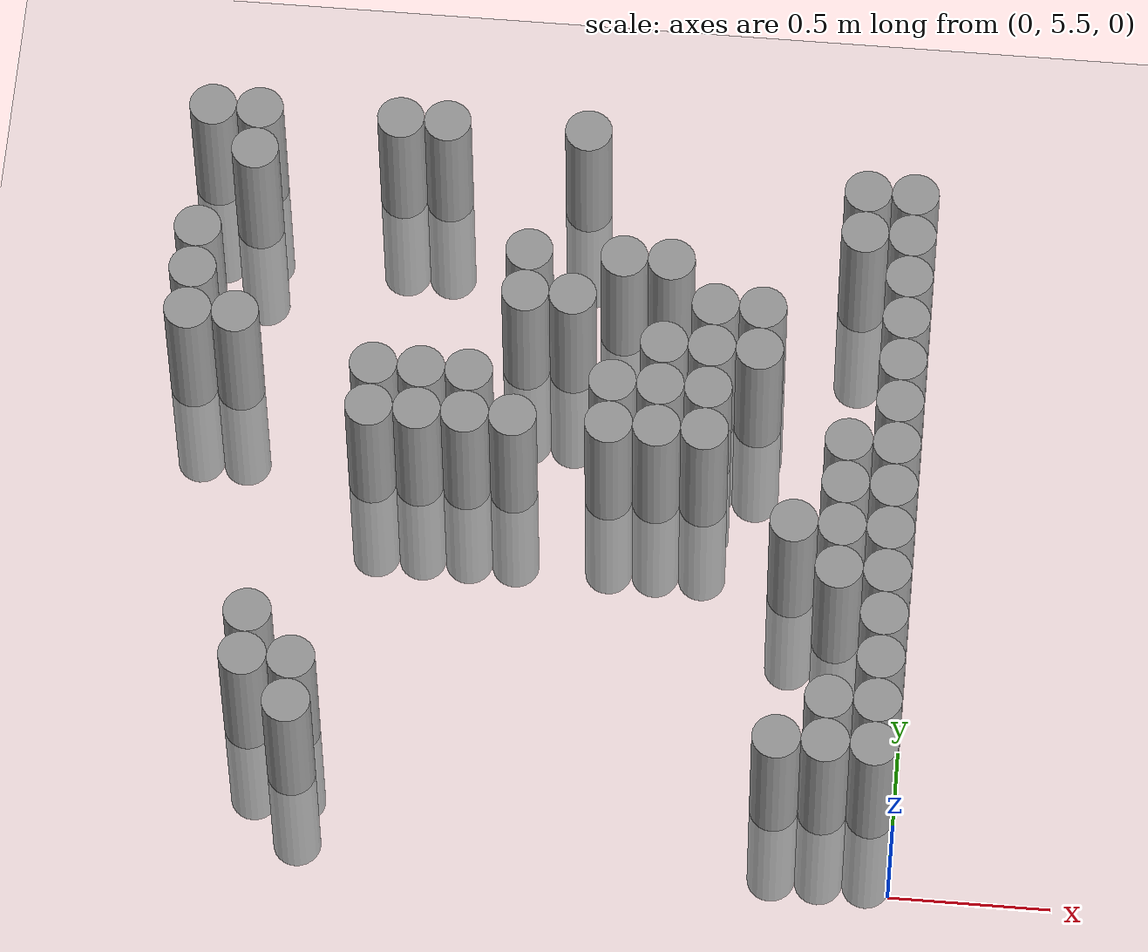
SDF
<sdf version="1.6">
 <world name="default">
  <model name="ground_plane">
   <static>1</static>
   <link name="link">
    <collision name="collision">
     <geometry><plane><normal>0 0 1</normal><size>100 100</size></plane></geometry>
     <surface><friction><ode><mu>100</mu><mu2>50</mu2></ode></friction></surface>
    </collision>
    <visual name="visual">
     <cast_shadows>0</cast_shadows>
     <geometry><plane><normal>0 0 1</normal><size>100 100</size></plane></geometry>
     <material>
      <script><uri>file://media/materials/scripts/gazebo.material</uri><name>Gazebo/Grey</name></script>
     </material>
    </visual>
   </link>
  </model>
  <model name="unit_cylinder_169">
   <pose>-2.325000 7.125000 0.000000 0.000000 0.000000 0.000000</pose>
   <link name="link">
    <inertial>
     <mass>1</mass>
     <inertia><ixx>0.145833</ixx><ixy>0</ixy><ixz>0</ixz><iyy>0.145833</iyy><iyz>0</iyz><izz>0.125</izz></inertia>
    </inertial>
    <collision name="collision">
     <geometry><cylinder><radius>0.075000</radius><length>1</length></cylinder></geometry>
    </collision>
    <visual name="visual">
     <geometry><cylinder><radius>0.075000</radius><length>1</length></cylinder></geometry>
     <material>
      <script><name>Gazebo/Grey</name><uri>file://media/materials/scripts/gazebo.material</uri></script>
     </material>
    </visual>
   </link>
  </model>
  <model name="unit_cylinder_170">
   <pose>-2.325000 7.275000 0.000000 0.000000 0.000000 0.000000</pose>
   <link name="link">
    <inertial>
     <mass>1</mass>
     <inertia><ixx>0.145833</ixx><ixy>0</ixy><ixz>0</ixz><iyy>0.145833</iyy><iyz>0</iyz><izz>0.125</izz></inertia>
    </inertial>
    <collision name="collision">
     <geometry><cylinder><radius>0.075000</radius><length>1</length></cylinder></geometry>
    </collision>
    <visual name="visual">
     <geometry><cylinder><radius>0.075000</radius><length>1</length></cylinder></geometry>
     <material>
      <script><name>Gazebo/Grey</name><uri>file://media/materials/scripts/gazebo.material</uri></script>
     </material>
    </visual>
   </link>
  </model>
  <model name="unit_cylinder_171">
   <pose>-2.325000 7.425000 0.000000 0.000000 0.000000 0.000000</pose>
   <link name="link">
    <inertial>
     <mass>1</mass>
     <inertia><ixx>0.145833</ixx><ixy>0</ixy><ixz>0</ixz><iyy>0.145833</iyy><iyz>0</iyz><izz>0.125</izz></inertia>
    </inertial>
    <collision name="collision">
     <geometry><cylinder><radius>0.075000</radius><length>1</length></cylinder></geometry>
    </collision>
    <visual name="visual">
     <geometry><cylinder><radius>0.075000</radius><length>1</length></cylinder></geometry>
     <material>
      <script><name>Gazebo/Grey</name><uri>file://media/materials/scripts/gazebo.material</uri></script>
     </material>
    </visual>
   </link>
  </model>
  <model name="unit_cylinder_172">
   <pose>-2.325000 7.875000 0.000000 0.000000 0.000000 0.000000</pose>
   <link name="link">
    <inertial>
     <mass>1</mass>
     <inertia><ixx>0.145833</ixx><ixy>0</ixy><ixz>0</ixz><iyy>0.145833</iyy><iyz>0</iyz><izz>0.125</izz></inertia>
    </inertial>
    <collision name="collision">
     <geometry><cylinder><radius>0.075000</radius><length>1</length></cylinder></geometry>
    </collision>
    <visual name="visual">
     <geometry><cylinder><radius>0.075000</radius><length>1</length></cylinder></geometry>
     <material>
      <script><name>Gazebo/Grey</name><uri>file://media/materials/scripts/gazebo.material</uri></script>
     </material>
    </visual>
   </link>
  </model>
  <model name="unit_cylinder_176">
   <pose>-2.175000 7.125000 0.000000 0.000000 0.000000 0.000000</pose>
   <link name="link">
    <inertial>
     <mass>1</mass>
     <inertia><ixx>0.145833</ixx><ixy>0</ixy><ixz>0</ixz><iyy>0.145833</iyy><iyz>0</iyz><izz>0.125</izz></inertia>
    </inertial>
    <collision name="collision">
     <geometry><cylinder><radius>0.075000</radius><length>1</length></cylinder></geometry>
    </collision>
    <visual name="visual">
     <geometry><cylinder><radius>0.075000</radius><length>1</length></cylinder></geometry>
     <material>
      <script><name>Gazebo/Grey</name><uri>file://media/materials/scripts/gazebo.material</uri></script>
     </material>
    </visual>
   </link>
  </model>
  <model name="unit_cylinder_177">
   <pose>-2.175000 7.725000 0.000000 0.000000 0.000000 0.000000</pose>
   <link name="link">
    <inertial>
     <mass>1</mass>
     <inertia><ixx>0.145833</ixx><ixy>0</ixy><ixz>0</ixz><iyy>0.145833</iyy><iyz>0</iyz><izz>0.125</izz></inertia>
    </inertial>
    <collision name="collision">
     <geometry><cylinder><radius>0.075000</radius><length>1</length></cylinder></geometry>
    </collision>
    <visual name="visual">
     <geometry><cylinder><radius>0.075000</radius><length>1</length></cylinder></geometry>
     <material>
      <script><name>Gazebo/Grey</name><uri>file://media/materials/scripts/gazebo.material</uri></script>
     </material>
    </visual>
   </link>
  </model>
  <model name="unit_cylinder_178">
   <pose>-2.175000 7.875000 0.000000 0.000000 0.000000 0.000000</pose>
   <link name="link">
    <inertial>
     <mass>1</mass>
     <inertia><ixx>0.145833</ixx><ixy>0</ixy><ixz>0</ixz><iyy>0.145833</iyy><iyz>0</iyz><izz>0.125</izz></inertia>
    </inertial>
    <collision name="collision">
     <geometry><cylinder><radius>0.075000</radius><length>1</length></cylinder></geometry>
    </collision>
    <visual name="visual">
     <geometry><cylinder><radius>0.075000</radius><length>1</length></cylinder></geometry>
     <material>
      <script><name>Gazebo/Grey</name><uri>file://media/materials/scripts/gazebo.material</uri></script>
     </material>
    </visual>
   </link>
  </model>
  <model name="unit_cylinder_184">
   <pose>-2.025000 5.925000 0.000000 0.000000 0.000000 0.000000</pose>
   <link name="link">
    <inertial>
     <mass>1</mass>
     <inertia><ixx>0.145833</ixx><ixy>0</ixy><ixz>0</ixz><iyy>0.145833</iyy><iyz>0</iyz><izz>0.125</izz></inertia>
    </inertial>
    <collision name="collision">
     <geometry><cylinder><radius>0.075000</radius><length>1</length></cylinder></geometry>
    </collision>
    <visual name="visual">
     <geometry><cylinder><radius>0.075000</radius><length>1</length></cylinder></geometry>
     <material>
      <script><name>Gazebo/Grey</name><uri>file://media/materials/scripts/gazebo.material</uri></script>
     </material>
    </visual>
   </link>
  </model>
  <model name="unit_cylinder_185">
   <pose>-2.025000 6.075000 0.000000 0.000000 0.000000 0.000000</pose>
   <link name="link">
    <inertial>
     <mass>1</mass>
     <inertia><ixx>0.145833</ixx><ixy>0</ixy><ixz>0</ixz><iyy>0.145833</iyy><iyz>0</iyz><izz>0.125</izz></inertia>
    </inertial>
    <collision name="collision">
     <geometry><cylinder><radius>0.075000</radius><length>1</length></cylinder></geometry>
    </collision>
    <visual name="visual">
     <geometry><cylinder><radius>0.075000</radius><length>1</length></cylinder></geometry>
     <material>
      <script><name>Gazebo/Grey</name><uri>file://media/materials/scripts/gazebo.material</uri></script>
     </material>
    </visual>
   </link>
  </model>
  <model name="unit_cylinder_190">
   <pose>-1.875000 5.775000 0.000000 0.000000 0.000000 0.000000</pose>
   <link name="link">
    <inertial>
     <mass>1</mass>
     <inertia><ixx>0.145833</ixx><ixy>0</ixy><ixz>0</ixz><iyy>0.145833</iyy><iyz>0</iyz><izz>0.125</izz></inertia>
    </inertial>
    <collision name="collision">
     <geometry><cylinder><radius>0.075000</radius><length>1</length></cylinder></geometry>
    </collision>
    <visual name="visual">
     <geometry><cylinder><radius>0.075000</radius><length>1</length></cylinder></geometry>
     <material>
      <script><name>Gazebo/Grey</name><uri>file://media/materials/scripts/gazebo.material</uri></script>
     </material>
    </visual>
   </link>
  </model>
  <model name="unit_cylinder_191">
   <pose>-1.875000 5.925000 0.000000 0.000000 0.000000 0.000000</pose>
   <link name="link">
    <inertial>
     <mass>1</mass>
     <inertia><ixx>0.145833</ixx><ixy>0</ixy><ixz>0</ixz><iyy>0.145833</iyy><iyz>0</iyz><izz>0.125</izz></inertia>
    </inertial>
    <collision name="collision">
     <geometry><cylinder><radius>0.075000</radius><length>1</length></cylinder></geometry>
    </collision>
    <visual name="visual">
     <geometry><cylinder><radius>0.075000</radius><length>1</length></cylinder></geometry>
     <material>
      <script><name>Gazebo/Grey</name><uri>file://media/materials/scripts/gazebo.material</uri></script>
     </material>
    </visual>
   </link>
  </model>
  <model name="unit_cylinder_199">
   <pose>-1.725000 6.825000 0.000000 0.000000 0.000000 0.000000</pose>
   <link name="link">
    <inertial>
     <mass>1</mass>
     <inertia><ixx>0.145833</ixx><ixy>0</ixy><ixz>0</ixz><iyy>0.145833</iyy><iyz>0</iyz><izz>0.125</izz></inertia>
    </inertial>
    <collision name="collision">
     <geometry><cylinder><radius>0.075000</radius><length>1</length></cylinder></geometry>
    </collision>
    <visual name="visual">
     <geometry><cylinder><radius>0.075000</radius><length>1</length></cylinder></geometry>
     <material>
      <script><name>Gazebo/Grey</name><uri>file://media/materials/scripts/gazebo.material</uri></script>
     </material>
    </visual>
   </link>
  </model>
  <model name="unit_cylinder_200">
   <pose>-1.725000 6.975000 0.000000 0.000000 0.000000 0.000000</pose>
   <link name="link">
    <inertial>
     <mass>1</mass>
     <inertia><ixx>0.145833</ixx><ixy>0</ixy><ixz>0</ixz><iyy>0.145833</iyy><iyz>0</iyz><izz>0.125</izz></inertia>
    </inertial>
    <collision name="collision">
     <geometry><cylinder><radius>0.075000</radius><length>1</length></cylinder></geometry>
    </collision>
    <visual name="visual">
     <geometry><cylinder><radius>0.075000</radius><length>1</length></cylinder></geometry>
     <material>
      <script><name>Gazebo/Grey</name><uri>file://media/materials/scripts/gazebo.material</uri></script>
     </material>
    </visual>
   </link>
  </model>
  <model name="unit_cylinder_201">
   <pose>-1.725000 7.875000 0.000000 0.000000 0.000000 0.000000</pose>
   <link name="link">
    <inertial>
     <mass>1</mass>
     <inertia><ixx>0.145833</ixx><ixy>0</ixy><ixz>0</ixz><iyy>0.145833</iyy><iyz>0</iyz><izz>0.125</izz></inertia>
    </inertial>
    <collision name="collision">
     <geometry><cylinder><radius>0.075000</radius><length>1</length></cylinder></geometry>
    </collision>
    <visual name="visual">
     <geometry><cylinder><radius>0.075000</radius><length>1</length></cylinder></geometry>
     <material>
      <script><name>Gazebo/Grey</name><uri>file://media/materials/scripts/gazebo.material</uri></script>
     </material>
    </visual>
   </link>
  </model>
  <model name="unit_cylinder_206">
   <pose>-1.575000 6.825000 0.000000 0.000000 0.000000 0.000000</pose>
   <link name="link">
    <inertial>
     <mass>1</mass>
     <inertia><ixx>0.145833</ixx><ixy>0</ixy><ixz>0</ixz><iyy>0.145833</iyy><iyz>0</iyz><izz>0.125</izz></inertia>
    </inertial>
    <collision name="collision">
     <geometry><cylinder><radius>0.075000</radius><length>1</length></cylinder></geometry>
    </collision>
    <visual name="visual">
     <geometry><cylinder><radius>0.075000</radius><length>1</length></cylinder></geometry>
     <material>
      <script><name>Gazebo/Grey</name><uri>file://media/materials/scripts/gazebo.material</uri></script>
     </material>
    </visual>
   </link>
  </model>
  <model name="unit_cylinder_207">
   <pose>-1.575000 6.975000 0.000000 0.000000 0.000000 0.000000</pose>
   <link name="link">
    <inertial>
     <mass>1</mass>
     <inertia><ixx>0.145833</ixx><ixy>0</ixy><ixz>0</ixz><iyy>0.145833</iyy><iyz>0</iyz><izz>0.125</izz></inertia>
    </inertial>
    <collision name="collision">
     <geometry><cylinder><radius>0.075000</radius><length>1</length></cylinder></geometry>
    </collision>
    <visual name="visual">
     <geometry><cylinder><radius>0.075000</radius><length>1</length></cylinder></geometry>
     <material>
      <script><name>Gazebo/Grey</name><uri>file://media/materials/scripts/gazebo.material</uri></script>
     </material>
    </visual>
   </link>
  </model>
  <model name="unit_cylinder_208">
   <pose>-1.575000 7.875000 0.000000 0.000000 0.000000 0.000000</pose>
   <link name="link">
    <inertial>
     <mass>1</mass>
     <inertia><ixx>0.145833</ixx><ixy>0</ixy><ixz>0</ixz><iyy>0.145833</iyy><iyz>0</iyz><izz>0.125</izz></inertia>
    </inertial>
    <collision name="collision">
     <geometry><cylinder><radius>0.075000</radius><length>1</length></cylinder></geometry>
    </collision>
    <visual name="visual">
     <geometry><cylinder><radius>0.075000</radius><length>1</length></cylinder></geometry>
     <material>
      <script><name>Gazebo/Grey</name><uri>file://media/materials/scripts/gazebo.material</uri></script>
     </material>
    </visual>
   </link>
  </model>
  <model name="unit_cylinder_214">
   <pose>-1.425000 6.825000 0.000000 0.000000 0.000000 0.000000</pose>
   <link name="link">
    <inertial>
     <mass>1</mass>
     <inertia><ixx>0.145833</ixx><ixy>0</ixy><ixz>0</ixz><iyy>0.145833</iyy><iyz>0</iyz><izz>0.125</izz></inertia>
    </inertial>
    <collision name="collision">
     <geometry><cylinder><radius>0.075000</radius><length>1</length></cylinder></geometry>
    </collision>
    <visual name="visual">
     <geometry><cylinder><radius>0.075000</radius><length>1</length></cylinder></geometry>
     <material>
      <script><name>Gazebo/Grey</name><uri>file://media/materials/scripts/gazebo.material</uri></script>
     </material>
    </visual>
   </link>
  </model>
  <model name="unit_cylinder_215">
   <pose>-1.425000 6.975000 0.000000 0.000000 0.000000 0.000000</pose>
   <link name="link">
    <inertial>
     <mass>1</mass>
     <inertia><ixx>0.145833</ixx><ixy>0</ixy><ixz>0</ixz><iyy>0.145833</iyy><iyz>0</iyz><izz>0.125</izz></inertia>
    </inertial>
    <collision name="collision">
     <geometry><cylinder><radius>0.075000</radius><length>1</length></cylinder></geometry>
    </collision>
    <visual name="visual">
     <geometry><cylinder><radius>0.075000</radius><length>1</length></cylinder></geometry>
     <material>
      <script><name>Gazebo/Grey</name><uri>file://media/materials/scripts/gazebo.material</uri></script>
     </material>
    </visual>
   </link>
  </model>
  <model name="unit_cylinder_220">
   <pose>-1.275000 6.825000 0.000000 0.000000 0.000000 0.000000</pose>
   <link name="link">
    <inertial>
     <mass>1</mass>
     <inertia><ixx>0.145833</ixx><ixy>0</ixy><ixz>0</ixz><iyy>0.145833</iyy><iyz>0</iyz><izz>0.125</izz></inertia>
    </inertial>
    <collision name="collision">
     <geometry><cylinder><radius>0.075000</radius><length>1</length></cylinder></geometry>
    </collision>
    <visual name="visual">
     <geometry><cylinder><radius>0.075000</radius><length>1</length></cylinder></geometry>
     <material>
      <script><name>Gazebo/Grey</name><uri>file://media/materials/scripts/gazebo.material</uri></script>
     </material>
    </visual>
   </link>
  </model>
  <model name="unit_cylinder_221">
   <pose>-1.275000 7.275000 0.000000 0.000000 0.000000 0.000000</pose>
   <link name="link">
    <inertial>
     <mass>1</mass>
     <inertia><ixx>0.145833</ixx><ixy>0</ixy><ixz>0</ixz><iyy>0.145833</iyy><iyz>0</iyz><izz>0.125</izz></inertia>
    </inertial>
    <collision name="collision">
     <geometry><cylinder><radius>0.075000</radius><length>1</length></cylinder></geometry>
    </collision>
    <visual name="visual">
     <geometry><cylinder><radius>0.075000</radius><length>1</length></cylinder></geometry>
     <material>
      <script><name>Gazebo/Grey</name><uri>file://media/materials/scripts/gazebo.material</uri></script>
     </material>
    </visual>
   </link>
  </model>
  <model name="unit_cylinder_222">
   <pose>-1.275000 7.425000 0.000000 0.000000 0.000000 0.000000</pose>
   <link name="link">
    <inertial>
     <mass>1</mass>
     <inertia><ixx>0.145833</ixx><ixy>0</ixy><ixz>0</ixz><iyy>0.145833</iyy><iyz>0</iyz><izz>0.125</izz></inertia>
    </inertial>
    <collision name="collision">
     <geometry><cylinder><radius>0.075000</radius><length>1</length></cylinder></geometry>
    </collision>
    <visual name="visual">
     <geometry><cylinder><radius>0.075000</radius><length>1</length></cylinder></geometry>
     <material>
      <script><name>Gazebo/Grey</name><uri>file://media/materials/scripts/gazebo.material</uri></script>
     </material>
    </visual>
   </link>
  </model>
  <model name="unit_cylinder_225">
   <pose>-1.125000 7.275000 0.000000 0.000000 0.000000 0.000000</pose>
   <link name="link">
    <inertial>
     <mass>1</mass>
     <inertia><ixx>0.145833</ixx><ixy>0</ixy><ixz>0</ixz><iyy>0.145833</iyy><iyz>0</iyz><izz>0.125</izz></inertia>
    </inertial>
    <collision name="collision">
     <geometry><cylinder><radius>0.075000</radius><length>1</length></cylinder></geometry>
    </collision>
    <visual name="visual">
     <geometry><cylinder><radius>0.075000</radius><length>1</length></cylinder></geometry>
     <material>
      <script><name>Gazebo/Grey</name><uri>file://media/materials/scripts/gazebo.material</uri></script>
     </material>
    </visual>
   </link>
  </model>
  <model name="unit_cylinder_226">
   <pose>-1.125000 7.875000 0.000000 0.000000 0.000000 0.000000</pose>
   <link name="link">
    <inertial>
     <mass>1</mass>
     <inertia><ixx>0.145833</ixx><ixy>0</ixy><ixz>0</ixz><iyy>0.145833</iyy><iyz>0</iyz><izz>0.125</izz></inertia>
    </inertial>
    <collision name="collision">
     <geometry><cylinder><radius>0.075000</radius><length>1</length></cylinder></geometry>
    </collision>
    <visual name="visual">
     <geometry><cylinder><radius>0.075000</radius><length>1</length></cylinder></geometry>
     <material>
      <script><name>Gazebo/Grey</name><uri>file://media/materials/scripts/gazebo.material</uri></script>
     </material>
    </visual>
   </link>
  </model>
  <model name="unit_cylinder_228">
   <pose>-0.975000 6.825000 0.000000 0.000000 0.000000 0.000000</pose>
   <link name="link">
    <inertial>
     <mass>1</mass>
     <inertia><ixx>0.145833</ixx><ixy>0</ixy><ixz>0</ixz><iyy>0.145833</iyy><iyz>0</iyz><izz>0.125</izz></inertia>
    </inertial>
    <collision name="collision">
     <geometry><cylinder><radius>0.075000</radius><length>1</length></cylinder></geometry>
    </collision>
    <visual name="visual">
     <geometry><cylinder><radius>0.075000</radius><length>1</length></cylinder></geometry>
     <material>
      <script><name>Gazebo/Grey</name><uri>file://media/materials/scripts/gazebo.material</uri></script>
     </material>
    </visual>
   </link>
  </model>
  <model name="unit_cylinder_229">
   <pose>-0.975000 6.975000 0.000000 0.000000 0.000000 0.000000</pose>
   <link name="link">
    <inertial>
     <mass>1</mass>
     <inertia><ixx>0.145833</ixx><ixy>0</ixy><ixz>0</ixz><iyy>0.145833</iyy><iyz>0</iyz><izz>0.125</izz></inertia>
    </inertial>
    <collision name="collision">
     <geometry><cylinder><radius>0.075000</radius><length>1</length></cylinder></geometry>
    </collision>
    <visual name="visual">
     <geometry><cylinder><radius>0.075000</radius><length>1</length></cylinder></geometry>
     <material>
      <script><name>Gazebo/Grey</name><uri>file://media/materials/scripts/gazebo.material</uri></script>
     </material>
    </visual>
   </link>
  </model>
  <model name="unit_cylinder_230">
   <pose>-0.975000 7.425000 0.000000 0.000000 0.000000 0.000000</pose>
   <link name="link">
    <inertial>
     <mass>1</mass>
     <inertia><ixx>0.145833</ixx><ixy>0</ixy><ixz>0</ixz><iyy>0.145833</iyy><iyz>0</iyz><izz>0.125</izz></inertia>
    </inertial>
    <collision name="collision">
     <geometry><cylinder><radius>0.075000</radius><length>1</length></cylinder></geometry>
    </collision>
    <visual name="visual">
     <geometry><cylinder><radius>0.075000</radius><length>1</length></cylinder></geometry>
     <material>
      <script><name>Gazebo/Grey</name><uri>file://media/materials/scripts/gazebo.material</uri></script>
     </material>
    </visual>
   </link>
  </model>
  <model name="unit_cylinder_234">
   <pose>-0.825000 6.825000 0.000000 0.000000 0.000000 0.000000</pose>
   <link name="link">
    <inertial>
     <mass>1</mass>
     <inertia><ixx>0.145833</ixx><ixy>0</ixy><ixz>0</ixz><iyy>0.145833</iyy><iyz>0</iyz><izz>0.125</izz></inertia>
    </inertial>
    <collision name="collision">
     <geometry><cylinder><radius>0.075000</radius><length>1</length></cylinder></geometry>
    </collision>
    <visual name="visual">
     <geometry><cylinder><radius>0.075000</radius><length>1</length></cylinder></geometry>
     <material>
      <script><name>Gazebo/Grey</name><uri>file://media/materials/scripts/gazebo.material</uri></script>
     </material>
    </visual>
   </link>
  </model>
  <model name="unit_cylinder_235">
   <pose>-0.825000 6.975000 0.000000 0.000000 0.000000 0.000000</pose>
   <link name="link">
    <inertial>
     <mass>1</mass>
     <inertia><ixx>0.145833</ixx><ixy>0</ixy><ixz>0</ixz><iyy>0.145833</iyy><iyz>0</iyz><izz>0.125</izz></inertia>
    </inertial>
    <collision name="collision">
     <geometry><cylinder><radius>0.075000</radius><length>1</length></cylinder></geometry>
    </collision>
    <visual name="visual">
     <geometry><cylinder><radius>0.075000</radius><length>1</length></cylinder></geometry>
     <material>
      <script><name>Gazebo/Grey</name><uri>file://media/materials/scripts/gazebo.material</uri></script>
     </material>
    </visual>
   </link>
  </model>
  <model name="unit_cylinder_236">
   <pose>-0.825000 7.125000 0.000000 0.000000 0.000000 0.000000</pose>
   <link name="link">
    <inertial>
     <mass>1</mass>
     <inertia><ixx>0.145833</ixx><ixy>0</ixy><ixz>0</ixz><iyy>0.145833</iyy><iyz>0</iyz><izz>0.125</izz></inertia>
    </inertial>
    <collision name="collision">
     <geometry><cylinder><radius>0.075000</radius><length>1</length></cylinder></geometry>
    </collision>
    <visual name="visual">
     <geometry><cylinder><radius>0.075000</radius><length>1</length></cylinder></geometry>
     <material>
      <script><name>Gazebo/Grey</name><uri>file://media/materials/scripts/gazebo.material</uri></script>
     </material>
    </visual>
   </link>
  </model>
  <model name="unit_cylinder_237">
   <pose>-0.825000 7.425000 0.000000 0.000000 0.000000 0.000000</pose>
   <link name="link">
    <inertial>
     <mass>1</mass>
     <inertia><ixx>0.145833</ixx><ixy>0</ixy><ixz>0</ixz><iyy>0.145833</iyy><iyz>0</iyz><izz>0.125</izz></inertia>
    </inertial>
    <collision name="collision">
     <geometry><cylinder><radius>0.075000</radius><length>1</length></cylinder></geometry>
    </collision>
    <visual name="visual">
     <geometry><cylinder><radius>0.075000</radius><length>1</length></cylinder></geometry>
     <material>
      <script><name>Gazebo/Grey</name><uri>file://media/materials/scripts/gazebo.material</uri></script>
     </material>
    </visual>
   </link>
  </model>
  <model name="unit_cylinder_242">
   <pose>-0.675000 6.825000 0.000000 0.000000 0.000000 0.000000</pose>
   <link name="link">
    <inertial>
     <mass>1</mass>
     <inertia><ixx>0.145833</ixx><ixy>0</ixy><ixz>0</ixz><iyy>0.145833</iyy><iyz>0</iyz><izz>0.125</izz></inertia>
    </inertial>
    <collision name="collision">
     <geometry><cylinder><radius>0.075000</radius><length>1</length></cylinder></geometry>
    </collision>
    <visual name="visual">
     <geometry><cylinder><radius>0.075000</radius><length>1</length></cylinder></geometry>
     <material>
      <script><name>Gazebo/Grey</name><uri>file://media/materials/scripts/gazebo.material</uri></script>
     </material>
    </visual>
   </link>
  </model>
  <model name="unit_cylinder_243">
   <pose>-0.675000 6.975000 0.000000 0.000000 0.000000 0.000000</pose>
   <link name="link">
    <inertial>
     <mass>1</mass>
     <inertia><ixx>0.145833</ixx><ixy>0</ixy><ixz>0</ixz><iyy>0.145833</iyy><iyz>0</iyz><izz>0.125</izz></inertia>
    </inertial>
    <collision name="collision">
     <geometry><cylinder><radius>0.075000</radius><length>1</length></cylinder></geometry>
    </collision>
    <visual name="visual">
     <geometry><cylinder><radius>0.075000</radius><length>1</length></cylinder></geometry>
     <material>
      <script><name>Gazebo/Grey</name><uri>file://media/materials/scripts/gazebo.material</uri></script>
     </material>
    </visual>
   </link>
  </model>
  <model name="unit_cylinder_244">
   <pose>-0.675000 7.125000 0.000000 0.000000 0.000000 0.000000</pose>
   <link name="link">
    <inertial>
     <mass>1</mass>
     <inertia><ixx>0.145833</ixx><ixy>0</ixy><ixz>0</ixz><iyy>0.145833</iyy><iyz>0</iyz><izz>0.125</izz></inertia>
    </inertial>
    <collision name="collision">
     <geometry><cylinder><radius>0.075000</radius><length>1</length></cylinder></geometry>
    </collision>
    <visual name="visual">
     <geometry><cylinder><radius>0.075000</radius><length>1</length></cylinder></geometry>
     <material>
      <script><name>Gazebo/Grey</name><uri>file://media/materials/scripts/gazebo.material</uri></script>
     </material>
    </visual>
   </link>
  </model>
  <model name="unit_cylinder_245">
   <pose>-0.675000 7.275000 0.000000 0.000000 0.000000 0.000000</pose>
   <link name="link">
    <inertial>
     <mass>1</mass>
     <inertia><ixx>0.145833</ixx><ixy>0</ixy><ixz>0</ixz><iyy>0.145833</iyy><iyz>0</iyz><izz>0.125</izz></inertia>
    </inertial>
    <collision name="collision">
     <geometry><cylinder><radius>0.075000</radius><length>1</length></cylinder></geometry>
    </collision>
    <visual name="visual">
     <geometry><cylinder><radius>0.075000</radius><length>1</length></cylinder></geometry>
     <material>
      <script><name>Gazebo/Grey</name><uri>file://media/materials/scripts/gazebo.material</uri></script>
     </material>
    </visual>
   </link>
  </model>
  <model name="unit_cylinder_250">
   <pose>-0.525000 7.125000 0.000000 0.000000 0.000000 0.000000</pose>
   <link name="link">
    <inertial>
     <mass>1</mass>
     <inertia><ixx>0.145833</ixx><ixy>0</ixy><ixz>0</ixz><iyy>0.145833</iyy><iyz>0</iyz><izz>0.125</izz></inertia>
    </inertial>
    <collision name="collision">
     <geometry><cylinder><radius>0.075000</radius><length>1</length></cylinder></geometry>
    </collision>
    <visual name="visual">
     <geometry><cylinder><radius>0.075000</radius><length>1</length></cylinder></geometry>
     <material>
      <script><name>Gazebo/Grey</name><uri>file://media/materials/scripts/gazebo.material</uri></script>
     </material>
    </visual>
   </link>
  </model>
  <model name="unit_cylinder_251">
   <pose>-0.525000 7.275000 0.000000 0.000000 0.000000 0.000000</pose>
   <link name="link">
    <inertial>
     <mass>1</mass>
     <inertia><ixx>0.145833</ixx><ixy>0</ixy><ixz>0</ixz><iyy>0.145833</iyy><iyz>0</iyz><izz>0.125</izz></inertia>
    </inertial>
    <collision name="collision">
     <geometry><cylinder><radius>0.075000</radius><length>1</length></cylinder></geometry>
    </collision>
    <visual name="visual">
     <geometry><cylinder><radius>0.075000</radius><length>1</length></cylinder></geometry>
     <material>
      <script><name>Gazebo/Grey</name><uri>file://media/materials/scripts/gazebo.material</uri></script>
     </material>
    </visual>
   </link>
  </model>
  <model name="unit_cylinder_256">
   <pose>-0.375000 5.775000 0.000000 0.000000 0.000000 0.000000</pose>
   <link name="link">
    <inertial>
     <mass>1</mass>
     <inertia><ixx>0.145833</ixx><ixy>0</ixy><ixz>0</ixz><iyy>0.145833</iyy><iyz>0</iyz><izz>0.125</izz></inertia>
    </inertial>
    <collision name="collision">
     <geometry><cylinder><radius>0.075000</radius><length>1</length></cylinder></geometry>
    </collision>
    <visual name="visual">
     <geometry><cylinder><radius>0.075000</radius><length>1</length></cylinder></geometry>
     <material>
      <script><name>Gazebo/Grey</name><uri>file://media/materials/scripts/gazebo.material</uri></script>
     </material>
    </visual>
   </link>
  </model>
  <model name="unit_cylinder_257">
   <pose>-0.375000 6.525000 0.000000 0.000000 0.000000 0.000000</pose>
   <link name="link">
    <inertial>
     <mass>1</mass>
     <inertia><ixx>0.145833</ixx><ixy>0</ixy><ixz>0</ixz><iyy>0.145833</iyy><iyz>0</iyz><izz>0.125</izz></inertia>
    </inertial>
    <collision name="collision">
     <geometry><cylinder><radius>0.075000</radius><length>1</length></cylinder></geometry>
    </collision>
    <visual name="visual">
     <geometry><cylinder><radius>0.075000</radius><length>1</length></cylinder></geometry>
     <material>
      <script><name>Gazebo/Grey</name><uri>file://media/materials/scripts/gazebo.material</uri></script>
     </material>
    </visual>
   </link>
  </model>
  <model name="unit_cylinder_262">
   <pose>-0.225000 5.775000 0.000000 0.000000 0.000000 0.000000</pose>
   <link name="link">
    <inertial>
     <mass>1</mass>
     <inertia><ixx>0.145833</ixx><ixy>0</ixy><ixz>0</ixz><iyy>0.145833</iyy><iyz>0</iyz><izz>0.125</izz></inertia>
    </inertial>
    <collision name="collision">
     <geometry><cylinder><radius>0.075000</radius><length>1</length></cylinder></geometry>
    </collision>
    <visual name="visual">
     <geometry><cylinder><radius>0.075000</radius><length>1</length></cylinder></geometry>
     <material>
      <script><name>Gazebo/Grey</name><uri>file://media/materials/scripts/gazebo.material</uri></script>
     </material>
    </visual>
   </link>
  </model>
  <model name="unit_cylinder_263">
   <pose>-0.225000 5.925000 0.000000 0.000000 0.000000 0.000000</pose>
   <link name="link">
    <inertial>
     <mass>1</mass>
     <inertia><ixx>0.145833</ixx><ixy>0</ixy><ixz>0</ixz><iyy>0.145833</iyy><iyz>0</iyz><izz>0.125</izz></inertia>
    </inertial>
    <collision name="collision">
     <geometry><cylinder><radius>0.075000</radius><length>1</length></cylinder></geometry>
    </collision>
    <visual name="visual">
     <geometry><cylinder><radius>0.075000</radius><length>1</length></cylinder></geometry>
     <material>
      <script><name>Gazebo/Grey</name><uri>file://media/materials/scripts/gazebo.material</uri></script>
     </material>
    </visual>
   </link>
  </model>
  <model name="unit_cylinder_264">
   <pose>-0.225000 6.375000 0.000000 0.000000 0.000000 0.000000</pose>
   <link name="link">
    <inertial>
     <mass>1</mass>
     <inertia><ixx>0.145833</ixx><ixy>0</ixy><ixz>0</ixz><iyy>0.145833</iyy><iyz>0</iyz><izz>0.125</izz></inertia>
    </inertial>
    <collision name="collision">
     <geometry><cylinder><radius>0.075000</radius><length>1</length></cylinder></geometry>
    </collision>
    <visual name="visual">
     <geometry><cylinder><radius>0.075000</radius><length>1</length></cylinder></geometry>
     <material>
      <script><name>Gazebo/Grey</name><uri>file://media/materials/scripts/gazebo.material</uri></script>
     </material>
    </visual>
   </link>
  </model>
  <model name="unit_cylinder_265">
   <pose>-0.225000 6.525000 0.000000 0.000000 0.000000 0.000000</pose>
   <link name="link">
    <inertial>
     <mass>1</mass>
     <inertia><ixx>0.145833</ixx><ixy>0</ixy><ixz>0</ixz><iyy>0.145833</iyy><iyz>0</iyz><izz>0.125</izz></inertia>
    </inertial>
    <collision name="collision">
     <geometry><cylinder><radius>0.075000</radius><length>1</length></cylinder></geometry>
    </collision>
    <visual name="visual">
     <geometry><cylinder><radius>0.075000</radius><length>1</length></cylinder></geometry>
     <material>
      <script><name>Gazebo/Grey</name><uri>file://media/materials/scripts/gazebo.material</uri></script>
     </material>
    </visual>
   </link>
  </model>
  <model name="unit_cylinder_266">
   <pose>-0.225000 6.675000 0.000000 0.000000 0.000000 0.000000</pose>
   <link name="link">
    <inertial>
     <mass>1</mass>
     <inertia><ixx>0.145833</ixx><ixy>0</ixy><ixz>0</ixz><iyy>0.145833</iyy><iyz>0</iyz><izz>0.125</izz></inertia>
    </inertial>
    <collision name="collision">
     <geometry><cylinder><radius>0.075000</radius><length>1</length></cylinder></geometry>
    </collision>
    <visual name="visual">
     <geometry><cylinder><radius>0.075000</radius><length>1</length></cylinder></geometry>
     <material>
      <script><name>Gazebo/Grey</name><uri>file://media/materials/scripts/gazebo.material</uri></script>
     </material>
    </visual>
   </link>
  </model>
  <model name="unit_cylinder_267">
   <pose>-0.225000 6.825000 0.000000 0.000000 0.000000 0.000000</pose>
   <link name="link">
    <inertial>
     <mass>1</mass>
     <inertia><ixx>0.145833</ixx><ixy>0</ixy><ixz>0</ixz><iyy>0.145833</iyy><iyz>0</iyz><izz>0.125</izz></inertia>
    </inertial>
    <collision name="collision">
     <geometry><cylinder><radius>0.075000</radius><length>1</length></cylinder></geometry>
    </collision>
    <visual name="visual">
     <geometry><cylinder><radius>0.075000</radius><length>1</length></cylinder></geometry>
     <material>
      <script><name>Gazebo/Grey</name><uri>file://media/materials/scripts/gazebo.material</uri></script>
     </material>
    </visual>
   </link>
  </model>
  <model name="unit_cylinder_268">
   <pose>-0.225000 7.575000 0.000000 0.000000 0.000000 0.000000</pose>
   <link name="link">
    <inertial>
     <mass>1</mass>
     <inertia><ixx>0.145833</ixx><ixy>0</ixy><ixz>0</ixz><iyy>0.145833</iyy><iyz>0</iyz><izz>0.125</izz></inertia>
    </inertial>
    <collision name="collision">
     <geometry><cylinder><radius>0.075000</radius><length>1</length></cylinder></geometry>
    </collision>
    <visual name="visual">
     <geometry><cylinder><radius>0.075000</radius><length>1</length></cylinder></geometry>
     <material>
      <script><name>Gazebo/Grey</name><uri>file://media/materials/scripts/gazebo.material</uri></script>
     </material>
    </visual>
   </link>
  </model>
  <model name="unit_cylinder_269">
   <pose>-0.225000 7.725000 0.000000 0.000000 0.000000 0.000000</pose>
   <link name="link">
    <inertial>
     <mass>1</mass>
     <inertia><ixx>0.145833</ixx><ixy>0</ixy><ixz>0</ixz><iyy>0.145833</iyy><iyz>0</iyz><izz>0.125</izz></inertia>
    </inertial>
    <collision name="collision">
     <geometry><cylinder><radius>0.075000</radius><length>1</length></cylinder></geometry>
    </collision>
    <visual name="visual">
     <geometry><cylinder><radius>0.075000</radius><length>1</length></cylinder></geometry>
     <material>
      <script><name>Gazebo/Grey</name><uri>file://media/materials/scripts/gazebo.material</uri></script>
     </material>
    </visual>
   </link>
  </model>
  <model name="unit_cylinder_283">
   <pose>-0.075000 5.775000 0.000000 0.000000 0.000000 0.000000</pose>
   <link name="link">
    <inertial>
     <mass>1</mass>
     <inertia><ixx>0.145833</ixx><ixy>0</ixy><ixz>0</ixz><iyy>0.145833</iyy><iyz>0</iyz><izz>0.125</izz></inertia>
    </inertial>
    <collision name="collision">
     <geometry><cylinder><radius>0.075000</radius><length>1</length></cylinder></geometry>
    </collision>
    <visual name="visual">
     <geometry><cylinder><radius>0.075000</radius><length>1</length></cylinder></geometry>
     <material>
      <script><name>Gazebo/Grey</name><uri>file://media/materials/scripts/gazebo.material</uri></script>
     </material>
    </visual>
   </link>
  </model>
  <model name="unit_cylinder_284">
   <pose>-0.075000 5.925000 0.000000 0.000000 0.000000 0.000000</pose>
   <link name="link">
    <inertial>
     <mass>1</mass>
     <inertia><ixx>0.145833</ixx><ixy>0</ixy><ixz>0</ixz><iyy>0.145833</iyy><iyz>0</iyz><izz>0.125</izz></inertia>
    </inertial>
    <collision name="collision">
     <geometry><cylinder><radius>0.075000</radius><length>1</length></cylinder></geometry>
    </collision>
    <visual name="visual">
     <geometry><cylinder><radius>0.075000</radius><length>1</length></cylinder></geometry>
     <material>
      <script><name>Gazebo/Grey</name><uri>file://media/materials/scripts/gazebo.material</uri></script>
     </material>
    </visual>
   </link>
  </model>
  <model name="unit_cylinder_285">
   <pose>-0.075000 6.075000 0.000000 0.000000 0.000000 0.000000</pose>
   <link name="link">
    <inertial>
     <mass>1</mass>
     <inertia><ixx>0.145833</ixx><ixy>0</ixy><ixz>0</ixz><iyy>0.145833</iyy><iyz>0</iyz><izz>0.125</izz></inertia>
    </inertial>
    <collision name="collision">
     <geometry><cylinder><radius>0.075000</radius><length>1</length></cylinder></geometry>
    </collision>
    <visual name="visual">
     <geometry><cylinder><radius>0.075000</radius><length>1</length></cylinder></geometry>
     <material>
      <script><name>Gazebo/Grey</name><uri>file://media/materials/scripts/gazebo.material</uri></script>
     </material>
    </visual>
   </link>
  </model>
  <model name="unit_cylinder_286">
   <pose>-0.075000 6.225000 0.000000 0.000000 0.000000 0.000000</pose>
   <link name="link">
    <inertial>
     <mass>1</mass>
     <inertia><ixx>0.145833</ixx><ixy>0</ixy><ixz>0</ixz><iyy>0.145833</iyy><iyz>0</iyz><izz>0.125</izz></inertia>
    </inertial>
    <collision name="collision">
     <geometry><cylinder><radius>0.075000</radius><length>1</length></cylinder></geometry>
    </collision>
    <visual name="visual">
     <geometry><cylinder><radius>0.075000</radius><length>1</length></cylinder></geometry>
     <material>
      <script><name>Gazebo/Grey</name><uri>file://media/materials/scripts/gazebo.material</uri></script>
     </material>
    </visual>
   </link>
  </model>
  <model name="unit_cylinder_287">
   <pose>-0.075000 6.375000 0.000000 0.000000 0.000000 0.000000</pose>
   <link name="link">
    <inertial>
     <mass>1</mass>
     <inertia><ixx>0.145833</ixx><ixy>0</ixy><ixz>0</ixz><iyy>0.145833</iyy><iyz>0</iyz><izz>0.125</izz></inertia>
    </inertial>
    <collision name="collision">
     <geometry><cylinder><radius>0.075000</radius><length>1</length></cylinder></geometry>
    </collision>
    <visual name="visual">
     <geometry><cylinder><radius>0.075000</radius><length>1</length></cylinder></geometry>
     <material>
      <script><name>Gazebo/Grey</name><uri>file://media/materials/scripts/gazebo.material</uri></script>
     </material>
    </visual>
   </link>
  </model>
  <model name="unit_cylinder_288">
   <pose>-0.075000 6.525000 0.000000 0.000000 0.000000 0.000000</pose>
   <link name="link">
    <inertial>
     <mass>1</mass>
     <inertia><ixx>0.145833</ixx><ixy>0</ixy><ixz>0</ixz><iyy>0.145833</iyy><iyz>0</iyz><izz>0.125</izz></inertia>
    </inertial>
    <collision name="collision">
     <geometry><cylinder><radius>0.075000</radius><length>1</length></cylinder></geometry>
    </collision>
    <visual name="visual">
     <geometry><cylinder><radius>0.075000</radius><length>1</length></cylinder></geometry>
     <material>
      <script><name>Gazebo/Grey</name><uri>file://media/materials/scripts/gazebo.material</uri></script>
     </material>
    </visual>
   </link>
  </model>
  <model name="unit_cylinder_289">
   <pose>-0.075000 6.675000 0.000000 0.000000 0.000000 0.000000</pose>
   <link name="link">
    <inertial>
     <mass>1</mass>
     <inertia><ixx>0.145833</ixx><ixy>0</ixy><ixz>0</ixz><iyy>0.145833</iyy><iyz>0</iyz><izz>0.125</izz></inertia>
    </inertial>
    <collision name="collision">
     <geometry><cylinder><radius>0.075000</radius><length>1</length></cylinder></geometry>
    </collision>
    <visual name="visual">
     <geometry><cylinder><radius>0.075000</radius><length>1</length></cylinder></geometry>
     <material>
      <script><name>Gazebo/Grey</name><uri>file://media/materials/scripts/gazebo.material</uri></script>
     </material>
    </visual>
   </link>
  </model>
  <model name="unit_cylinder_290">
   <pose>-0.075000 6.825000 0.000000 0.000000 0.000000 0.000000</pose>
   <link name="link">
    <inertial>
     <mass>1</mass>
     <inertia><ixx>0.145833</ixx><ixy>0</ixy><ixz>0</ixz><iyy>0.145833</iyy><iyz>0</iyz><izz>0.125</izz></inertia>
    </inertial>
    <collision name="collision">
     <geometry><cylinder><radius>0.075000</radius><length>1</length></cylinder></geometry>
    </collision>
    <visual name="visual">
     <geometry><cylinder><radius>0.075000</radius><length>1</length></cylinder></geometry>
     <material>
      <script><name>Gazebo/Grey</name><uri>file://media/materials/scripts/gazebo.material</uri></script>
     </material>
    </visual>
   </link>
  </model>
  <model name="unit_cylinder_291">
   <pose>-0.075000 6.975000 0.000000 0.000000 0.000000 0.000000</pose>
   <link name="link">
    <inertial>
     <mass>1</mass>
     <inertia><ixx>0.145833</ixx><ixy>0</ixy><ixz>0</ixz><iyy>0.145833</iyy><iyz>0</iyz><izz>0.125</izz></inertia>
    </inertial>
    <collision name="collision">
     <geometry><cylinder><radius>0.075000</radius><length>1</length></cylinder></geometry>
    </collision>
    <visual name="visual">
     <geometry><cylinder><radius>0.075000</radius><length>1</length></cylinder></geometry>
     <material>
      <script><name>Gazebo/Grey</name><uri>file://media/materials/scripts/gazebo.material</uri></script>
     </material>
    </visual>
   </link>
  </model>
  <model name="unit_cylinder_292">
   <pose>-0.075000 7.125000 0.000000 0.000000 0.000000 0.000000</pose>
   <link name="link">
    <inertial>
     <mass>1</mass>
     <inertia><ixx>0.145833</ixx><ixy>0</ixy><ixz>0</ixz><iyy>0.145833</iyy><iyz>0</iyz><izz>0.125</izz></inertia>
    </inertial>
    <collision name="collision">
     <geometry><cylinder><radius>0.075000</radius><length>1</length></cylinder></geometry>
    </collision>
    <visual name="visual">
     <geometry><cylinder><radius>0.075000</radius><length>1</length></cylinder></geometry>
     <material>
      <script><name>Gazebo/Grey</name><uri>file://media/materials/scripts/gazebo.material</uri></script>
     </material>
    </visual>
   </link>
  </model>
  <model name="unit_cylinder_293">
   <pose>-0.075000 7.275000 0.000000 0.000000 0.000000 0.000000</pose>
   <link name="link">
    <inertial>
     <mass>1</mass>
     <inertia><ixx>0.145833</ixx><ixy>0</ixy><ixz>0</ixz><iyy>0.145833</iyy><iyz>0</iyz><izz>0.125</izz></inertia>
    </inertial>
    <collision name="collision">
     <geometry><cylinder><radius>0.075000</radius><length>1</length></cylinder></geometry>
    </collision>
    <visual name="visual">
     <geometry><cylinder><radius>0.075000</radius><length>1</length></cylinder></geometry>
     <material>
      <script><name>Gazebo/Grey</name><uri>file://media/materials/scripts/gazebo.material</uri></script>
     </material>
    </visual>
   </link>
  </model>
  <model name="unit_cylinder_294">
   <pose>-0.075000 7.425000 0.000000 0.000000 0.000000 0.000000</pose>
   <link name="link">
    <inertial>
     <mass>1</mass>
     <inertia><ixx>0.145833</ixx><ixy>0</ixy><ixz>0</ixz><iyy>0.145833</iyy><iyz>0</iyz><izz>0.125</izz></inertia>
    </inertial>
    <collision name="collision">
     <geometry><cylinder><radius>0.075000</radius><length>1</length></cylinder></geometry>
    </collision>
    <visual name="visual">
     <geometry><cylinder><radius>0.075000</radius><length>1</length></cylinder></geometry>
     <material>
      <script><name>Gazebo/Grey</name><uri>file://media/materials/scripts/gazebo.material</uri></script>
     </material>
    </visual>
   </link>
  </model>
  <model name="unit_cylinder_295">
   <pose>-0.075000 7.575000 0.000000 0.000000 0.000000 0.000000</pose>
   <link name="link">
    <inertial>
     <mass>1</mass>
     <inertia><ixx>0.145833</ixx><ixy>0</ixy><ixz>0</ixz><iyy>0.145833</iyy><iyz>0</iyz><izz>0.125</izz></inertia>
    </inertial>
    <collision name="collision">
     <geometry><cylinder><radius>0.075000</radius><length>1</length></cylinder></geometry>
    </collision>
    <visual name="visual">
     <geometry><cylinder><radius>0.075000</radius><length>1</length></cylinder></geometry>
     <material>
      <script><name>Gazebo/Grey</name><uri>file://media/materials/scripts/gazebo.material</uri></script>
     </material>
    </visual>
   </link>
  </model>
  <model name="unit_cylinder_296">
   <pose>-0.075000 7.725000 0.000000 0.000000 0.000000 0.000000</pose>
   <link name="link">
    <inertial>
     <mass>1</mass>
     <inertia><ixx>0.145833</ixx><ixy>0</ixy><ixz>0</ixz><iyy>0.145833</iyy><iyz>0</iyz><izz>0.125</izz></inertia>
    </inertial>
    <collision name="collision">
     <geometry><cylinder><radius>0.075000</radius><length>1</length></cylinder></geometry>
    </collision>
    <visual name="visual">
     <geometry><cylinder><radius>0.075000</radius><length>1</length></cylinder></geometry>
     <material>
      <script><name>Gazebo/Grey</name><uri>file://media/materials/scripts/gazebo.material</uri></script>
     </material>
    </visual>
   </link>
  </model>
 </world>
</sdf>
